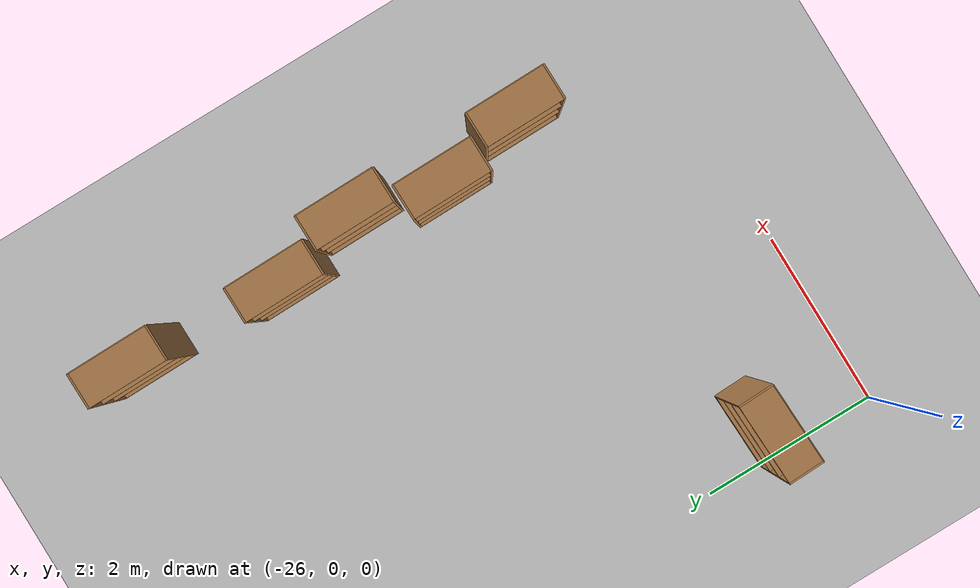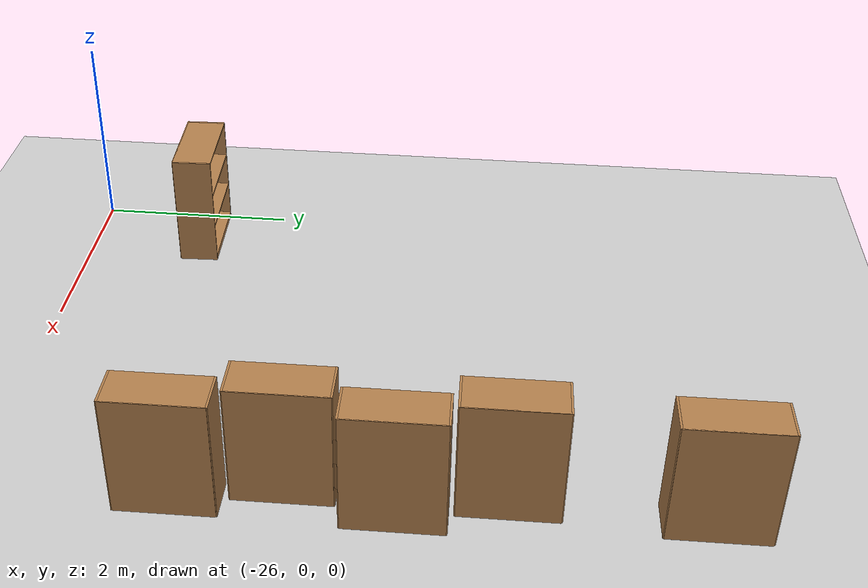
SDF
<sdf version="1.6">
 <world name="default">
  <model name="ground_plane">
   <static>1</static>
   <link name="link">
    <collision name="collision">
     <geometry><plane><normal>0 0 1</normal><size>100 100</size></plane></geometry>
     <surface>
      <contact><collide_bitmask>65535</collide_bitmask></contact>
      <friction><ode><mu>100</mu><mu2>50</mu2></ode></friction>
     </surface>
    </collision>
    <visual name="visual">
     <cast_shadows>0</cast_shadows>
     <geometry><plane><normal>0 0 1</normal><size>100 100</size></plane></geometry>
     <material>
      <script><uri>file://media/materials/scripts/gazebo.material</uri><name>Gazebo/Grey</name></script>
     </material>
    </visual>
   </link>
  </model>
  <model name="bookshelf_clone_2_clone_clone_0_clone_3_clone_0_clone_1_clone_clone_0_clone_0_clone_1">
   <static>1</static>
   <link name="link">
    <inertial><mass>1</mass></inertial>
    <collision name="back">
     <pose>0 0.005 0.6 0 -0 0</pose>
     <geometry><box><size>0.9 0.01 1.2</size></box></geometry>
    </collision>
    <visual name="visual1">
     <pose>0 0.005 0.6 0 -0 0</pose>
     <geometry><box><size>0.9 0.01 1.2</size></box></geometry>
     <material>
      <script><uri>file://media/materials/scripts/gazebo.material</uri><name>Gazebo/Wood</name></script>
     </material>
    </visual>
    <collision name="left_side">
     <pose>0.45 -0.195 0.6 0 -0 0</pose>
     <geometry><box><size>0.02 0.4 1.2</size></box></geometry>
    </collision>
    <visual name="visual2">
     <pose>0.45 -0.195 0.6 0 -0 0</pose>
     <geometry><box><size>0.02 0.4 1.2</size></box></geometry>
     <material>
      <script><uri>file://media/materials/scripts/gazebo.material</uri><name>Gazebo/Wood</name></script>
     </material>
    </visual>
    <collision name="right_side">
     <pose>-0.45 -0.195 0.6 0 -0 0</pose>
     <geometry><box><size>0.02 0.4 1.2</size></box></geometry>
    </collision>
    <visual name="visual3">
     <pose>-0.45 -0.195 0.6 0 -0 0</pose>
     <geometry><box><size>0.02 0.4 1.2</size></box></geometry>
     <material>
      <script><uri>file://media/materials/scripts/gazebo.material</uri><name>Gazebo/Wood</name></script>
     </material>
    </visual>
    <collision name="bottom">
     <pose>0 -0.195 0.03 0 -0 0</pose>
     <geometry><box><size>0.88 0.4 0.06</size></box></geometry>
    </collision>
    <visual name="visual4">
     <pose>0 -0.195 0.03 0 -0 0</pose>
     <geometry><box><size>0.88 0.4 0.06</size></box></geometry>
     <material>
      <script><uri>file://media/materials/scripts/gazebo.material</uri><name>Gazebo/Wood</name></script>
     </material>
    </visual>
    <collision name="top">
     <pose>0 -0.195 1.19 0 -0 0</pose>
     <geometry><box><size>0.88 0.4 0.02</size></box></geometry>
    </collision>
    <visual name="visual5">
     <pose>0 -0.195 1.19 0 -0 0</pose>
     <geometry><box><size>0.88 0.4 0.02</size></box></geometry>
     <material>
      <script><uri>file://media/materials/scripts/gazebo.material</uri><name>Gazebo/Wood</name></script>
     </material>
    </visual>
    <collision name="low_shelf">
     <pose>0 -0.195 0.43 0 -0 0</pose>
     <geometry><box><size>0.88 0.4 0.02</size></box></geometry>
    </collision>
    <visual name="visual6">
     <pose>0 -0.195 0.43 0 -0 0</pose>
     <geometry><box><size>0.88 0.4 0.02</size></box></geometry>
     <material>
      <script><uri>file://media/materials/scripts/gazebo.material</uri><name>Gazebo/Wood</name></script>
     </material>
    </visual>
    <collision name="high_shelf">
     <pose>0 -0.195 0.8 0 -0 0</pose>
     <geometry><box><size>0.88 0.4 0.02</size></box></geometry>
    </collision>
    <visual name="visual7">
     <pose>0 -0.195 0.8 0 -0 0</pose>
     <geometry><box><size>0.88 0.4 0.02</size></box></geometry>
     <material>
      <script><uri>file://media/materials/scripts/gazebo.material</uri><name>Gazebo/Wood</name></script>
     </material>
    </visual>
   </link>
   <pose>-21.4325 6.3905 0 0 0 -1.56003</pose>
  </model>
  <model name="bookshelf_clone_2_clone_clone_0_clone_clone_11">
   <static>1</static>
   <link name="link">
    <inertial><mass>1</mass></inertial>
    <collision name="back">
     <pose>0 0.005 0.6 0 -0 0</pose>
     <geometry><box><size>0.9 0.01 1.2</size></box></geometry>
    </collision>
    <visual name="visual1">
     <pose>0 0.005 0.6 0 -0 0</pose>
     <geometry><box><size>0.9 0.01 1.2</size></box></geometry>
     <material>
      <script><uri>file://media/materials/scripts/gazebo.material</uri><name>Gazebo/Wood</name></script>
     </material>
    </visual>
    <collision name="left_side">
     <pose>0.45 -0.195 0.6 0 -0 0</pose>
     <geometry><box><size>0.02 0.4 1.2</size></box></geometry>
    </collision>
    <visual name="visual2">
     <pose>0.45 -0.195 0.6 0 -0 0</pose>
     <geometry><box><size>0.02 0.4 1.2</size></box></geometry>
     <material>
      <script><uri>file://media/materials/scripts/gazebo.material</uri><name>Gazebo/Wood</name></script>
     </material>
    </visual>
    <collision name="right_side">
     <pose>-0.45 -0.195 0.6 0 -0 0</pose>
     <geometry><box><size>0.02 0.4 1.2</size></box></geometry>
    </collision>
    <visual name="visual3">
     <pose>-0.45 -0.195 0.6 0 -0 0</pose>
     <geometry><box><size>0.02 0.4 1.2</size></box></geometry>
     <material>
      <script><uri>file://media/materials/scripts/gazebo.material</uri><name>Gazebo/Wood</name></script>
     </material>
    </visual>
    <collision name="bottom">
     <pose>0 -0.195 0.03 0 -0 0</pose>
     <geometry><box><size>0.88 0.4 0.06</size></box></geometry>
    </collision>
    <visual name="visual4">
     <pose>0 -0.195 0.03 0 -0 0</pose>
     <geometry><box><size>0.88 0.4 0.06</size></box></geometry>
     <material>
      <script><uri>file://media/materials/scripts/gazebo.material</uri><name>Gazebo/Wood</name></script>
     </material>
    </visual>
    <collision name="top">
     <pose>0 -0.195 1.19 0 -0 0</pose>
     <geometry><box><size>0.88 0.4 0.02</size></box></geometry>
    </collision>
    <visual name="visual5">
     <pose>0 -0.195 1.19 0 -0 0</pose>
     <geometry><box><size>0.88 0.4 0.02</size></box></geometry>
     <material>
      <script><uri>file://media/materials/scripts/gazebo.material</uri><name>Gazebo/Wood</name></script>
     </material>
    </visual>
    <collision name="low_shelf">
     <pose>0 -0.195 0.43 0 -0 0</pose>
     <geometry><box><size>0.88 0.4 0.02</size></box></geometry>
    </collision>
    <visual name="visual6">
     <pose>0 -0.195 0.43 0 -0 0</pose>
     <geometry><box><size>0.88 0.4 0.02</size></box></geometry>
     <material>
      <script><uri>file://media/materials/scripts/gazebo.material</uri><name>Gazebo/Wood</name></script>
     </material>
    </visual>
    <collision name="high_shelf">
     <pose>0 -0.195 0.8 0 -0 0</pose>
     <geometry><box><size>0.88 0.4 0.02</size></box></geometry>
    </collision>
    <visual name="visual7">
     <pose>0 -0.195 0.8 0 -0 0</pose>
     <geometry><box><size>0.88 0.4 0.02</size></box></geometry>
     <material>
      <script><uri>file://media/materials/scripts/gazebo.material</uri><name>Gazebo/Wood</name></script>
     </material>
    </visual>
   </link>
   <pose>-25.5638 1.00162 0 0 0 -3.10717</pose>
  </model>
  <model name="bookshelf_clone_2_clone_clone_0_clone_3_clone_0_clone_1_clone_clone_0_clone_0_clone_1_clone">
   <static>1</static>
   <link name="link">
    <inertial><mass>1</mass></inertial>
    <collision name="back">
     <pose>0 0.005 0.6 0 -0 0</pose>
     <geometry><box><size>0.9 0.01 1.2</size></box></geometry>
    </collision>
    <visual name="visual1">
     <pose>0 0.005 0.6 0 -0 0</pose>
     <geometry><box><size>0.9 0.01 1.2</size></box></geometry>
     <material>
      <script><uri>file://media/materials/scripts/gazebo.material</uri><name>Gazebo/Wood</name></script>
     </material>
    </visual>
    <collision name="left_side">
     <pose>0.45 -0.195 0.6 0 -0 0</pose>
     <geometry><box><size>0.02 0.4 1.2</size></box></geometry>
    </collision>
    <visual name="visual2">
     <pose>0.45 -0.195 0.6 0 -0 0</pose>
     <geometry><box><size>0.02 0.4 1.2</size></box></geometry>
     <material>
      <script><uri>file://media/materials/scripts/gazebo.material</uri><name>Gazebo/Wood</name></script>
     </material>
    </visual>
    <collision name="right_side">
     <pose>-0.45 -0.195 0.6 0 -0 0</pose>
     <geometry><box><size>0.02 0.4 1.2</size></box></geometry>
    </collision>
    <visual name="visual3">
     <pose>-0.45 -0.195 0.6 0 -0 0</pose>
     <geometry><box><size>0.02 0.4 1.2</size></box></geometry>
     <material>
      <script><uri>file://media/materials/scripts/gazebo.material</uri><name>Gazebo/Wood</name></script>
     </material>
    </visual>
    <collision name="bottom">
     <pose>0 -0.195 0.03 0 -0 0</pose>
     <geometry><box><size>0.88 0.4 0.06</size></box></geometry>
    </collision>
    <visual name="visual4">
     <pose>0 -0.195 0.03 0 -0 0</pose>
     <geometry><box><size>0.88 0.4 0.06</size></box></geometry>
     <material>
      <script><uri>file://media/materials/scripts/gazebo.material</uri><name>Gazebo/Wood</name></script>
     </material>
    </visual>
    <collision name="top">
     <pose>0 -0.195 1.19 0 -0 0</pose>
     <geometry><box><size>0.88 0.4 0.02</size></box></geometry>
    </collision>
    <visual name="visual5">
     <pose>0 -0.195 1.19 0 -0 0</pose>
     <geometry><box><size>0.88 0.4 0.02</size></box></geometry>
     <material>
      <script><uri>file://media/materials/scripts/gazebo.material</uri><name>Gazebo/Wood</name></script>
     </material>
    </visual>
    <collision name="low_shelf">
     <pose>0 -0.195 0.43 0 -0 0</pose>
     <geometry><box><size>0.88 0.4 0.02</size></box></geometry>
    </collision>
    <visual name="visual6">
     <pose>0 -0.195 0.43 0 -0 0</pose>
     <geometry><box><size>0.88 0.4 0.02</size></box></geometry>
     <material>
      <script><uri>file://media/materials/scripts/gazebo.material</uri><name>Gazebo/Wood</name></script>
     </material>
    </visual>
    <collision name="high_shelf">
     <pose>0 -0.195 0.8 0 -0 0</pose>
     <geometry><box><size>0.88 0.4 0.02</size></box></geometry>
    </collision>
    <visual name="visual7">
     <pose>0 -0.195 0.8 0 -0 0</pose>
     <geometry><box><size>0.88 0.4 0.02</size></box></geometry>
     <material>
      <script><uri>file://media/materials/scripts/gazebo.material</uri><name>Gazebo/Wood</name></script>
     </material>
    </visual>
   </link>
   <pose>-21.514 4.64988 0 0 0 -1.56003</pose>
  </model>
  <model name="bookshelf_clone_2_clone_clone_0_clone_3_clone_0_clone_1_clone_clone_0_clone_0_clone_1_clone_0">
   <static>1</static>
   <link name="link">
    <inertial><mass>1</mass></inertial>
    <collision name="back">
     <pose>0 0.005 0.6 0 -0 0</pose>
     <geometry><box><size>0.9 0.01 1.2</size></box></geometry>
    </collision>
    <visual name="visual1">
     <pose>0 0.005 0.6 0 -0 0</pose>
     <geometry><box><size>0.9 0.01 1.2</size></box></geometry>
     <material>
      <script><uri>file://media/materials/scripts/gazebo.material</uri><name>Gazebo/Wood</name></script>
     </material>
    </visual>
    <collision name="left_side">
     <pose>0.45 -0.195 0.6 0 -0 0</pose>
     <geometry><box><size>0.02 0.4 1.2</size></box></geometry>
    </collision>
    <visual name="visual2">
     <pose>0.45 -0.195 0.6 0 -0 0</pose>
     <geometry><box><size>0.02 0.4 1.2</size></box></geometry>
     <material>
      <script><uri>file://media/materials/scripts/gazebo.material</uri><name>Gazebo/Wood</name></script>
     </material>
    </visual>
    <collision name="right_side">
     <pose>-0.45 -0.195 0.6 0 -0 0</pose>
     <geometry><box><size>0.02 0.4 1.2</size></box></geometry>
    </collision>
    <visual name="visual3">
     <pose>-0.45 -0.195 0.6 0 -0 0</pose>
     <geometry><box><size>0.02 0.4 1.2</size></box></geometry>
     <material>
      <script><uri>file://media/materials/scripts/gazebo.material</uri><name>Gazebo/Wood</name></script>
     </material>
    </visual>
    <collision name="bottom">
     <pose>0 -0.195 0.03 0 -0 0</pose>
     <geometry><box><size>0.88 0.4 0.06</size></box></geometry>
    </collision>
    <visual name="visual4">
     <pose>0 -0.195 0.03 0 -0 0</pose>
     <geometry><box><size>0.88 0.4 0.06</size></box></geometry>
     <material>
      <script><uri>file://media/materials/scripts/gazebo.material</uri><name>Gazebo/Wood</name></script>
     </material>
    </visual>
    <collision name="top">
     <pose>0 -0.195 1.19 0 -0 0</pose>
     <geometry><box><size>0.88 0.4 0.02</size></box></geometry>
    </collision>
    <visual name="visual5">
     <pose>0 -0.195 1.19 0 -0 0</pose>
     <geometry><box><size>0.88 0.4 0.02</size></box></geometry>
     <material>
      <script><uri>file://media/materials/scripts/gazebo.material</uri><name>Gazebo/Wood</name></script>
     </material>
    </visual>
    <collision name="low_shelf">
     <pose>0 -0.195 0.43 0 -0 0</pose>
     <geometry><box><size>0.88 0.4 0.02</size></box></geometry>
    </collision>
    <visual name="visual6">
     <pose>0 -0.195 0.43 0 -0 0</pose>
     <geometry><box><size>0.88 0.4 0.02</size></box></geometry>
     <material>
      <script><uri>file://media/materials/scripts/gazebo.material</uri><name>Gazebo/Wood</name></script>
     </material>
    </visual>
    <collision name="high_shelf">
     <pose>0 -0.195 0.8 0 -0 0</pose>
     <geometry><box><size>0.88 0.4 0.02</size></box></geometry>
    </collision>
    <visual name="visual7">
     <pose>0 -0.195 0.8 0 -0 0</pose>
     <geometry><box><size>0.88 0.4 0.02</size></box></geometry>
     <material>
      <script><uri>file://media/materials/scripts/gazebo.material</uri><name>Gazebo/Wood</name></script>
     </material>
    </visual>
   </link>
   <pose>-21.2729 3.69144 0 0 0 -1.56003</pose>
  </model>
  <model name="bookshelf_clone_2_clone_clone_0_clone_3_clone_0_clone_1_clone_clone_0_clone_0_clone_1_clone_1">
   <static>1</static>
   <link name="link">
    <inertial><mass>1</mass></inertial>
    <collision name="back">
     <pose>0 0.005 0.6 0 -0 0</pose>
     <geometry><box><size>0.9 0.01 1.2</size></box></geometry>
    </collision>
    <visual name="visual1">
     <pose>0 0.005 0.6 0 -0 0</pose>
     <geometry><box><size>0.9 0.01 1.2</size></box></geometry>
     <material>
      <script><uri>file://media/materials/scripts/gazebo.material</uri><name>Gazebo/Wood</name></script>
     </material>
    </visual>
    <collision name="left_side">
     <pose>0.45 -0.195 0.6 0 -0 0</pose>
     <geometry><box><size>0.02 0.4 1.2</size></box></geometry>
    </collision>
    <visual name="visual2">
     <pose>0.45 -0.195 0.6 0 -0 0</pose>
     <geometry><box><size>0.02 0.4 1.2</size></box></geometry>
     <material>
      <script><uri>file://media/materials/scripts/gazebo.material</uri><name>Gazebo/Wood</name></script>
     </material>
    </visual>
    <collision name="right_side">
     <pose>-0.45 -0.195 0.6 0 -0 0</pose>
     <geometry><box><size>0.02 0.4 1.2</size></box></geometry>
    </collision>
    <visual name="visual3">
     <pose>-0.45 -0.195 0.6 0 -0 0</pose>
     <geometry><box><size>0.02 0.4 1.2</size></box></geometry>
     <material>
      <script><uri>file://media/materials/scripts/gazebo.material</uri><name>Gazebo/Wood</name></script>
     </material>
    </visual>
    <collision name="bottom">
     <pose>0 -0.195 0.03 0 -0 0</pose>
     <geometry><box><size>0.88 0.4 0.06</size></box></geometry>
    </collision>
    <visual name="visual4">
     <pose>0 -0.195 0.03 0 -0 0</pose>
     <geometry><box><size>0.88 0.4 0.06</size></box></geometry>
     <material>
      <script><uri>file://media/materials/scripts/gazebo.material</uri><name>Gazebo/Wood</name></script>
     </material>
    </visual>
    <collision name="top">
     <pose>0 -0.195 1.19 0 -0 0</pose>
     <geometry><box><size>0.88 0.4 0.02</size></box></geometry>
    </collision>
    <visual name="visual5">
     <pose>0 -0.195 1.19 0 -0 0</pose>
     <geometry><box><size>0.88 0.4 0.02</size></box></geometry>
     <material>
      <script><uri>file://media/materials/scripts/gazebo.material</uri><name>Gazebo/Wood</name></script>
     </material>
    </visual>
    <collision name="low_shelf">
     <pose>0 -0.195 0.43 0 -0 0</pose>
     <geometry><box><size>0.88 0.4 0.02</size></box></geometry>
    </collision>
    <visual name="visual6">
     <pose>0 -0.195 0.43 0 -0 0</pose>
     <geometry><box><size>0.88 0.4 0.02</size></box></geometry>
     <material>
      <script><uri>file://media/materials/scripts/gazebo.material</uri><name>Gazebo/Wood</name></script>
     </material>
    </visual>
    <collision name="high_shelf">
     <pose>0 -0.195 0.8 0 -0 0</pose>
     <geometry><box><size>0.88 0.4 0.02</size></box></geometry>
    </collision>
    <visual name="visual7">
     <pose>0 -0.195 0.8 0 -0 0</pose>
     <geometry><box><size>0.88 0.4 0.02</size></box></geometry>
     <material>
      <script><uri>file://media/materials/scripts/gazebo.material</uri><name>Gazebo/Wood</name></script>
     </material>
    </visual>
   </link>
   <pose>-21.5133 2.71967 0 0 0 -1.56003</pose>
  </model>
  <model name="bookshelf_clone_2_clone_clone_0_clone_3_clone_0_clone_1_clone_clone_0_clone_0_clone_1_clone_2">
   <static>1</static>
   <link name="link">
    <inertial><mass>1</mass></inertial>
    <collision name="back">
     <pose>0 0.005 0.6 0 -0 0</pose>
     <geometry><box><size>0.9 0.01 1.2</size></box></geometry>
    </collision>
    <visual name="visual1">
     <pose>0 0.005 0.6 0 -0 0</pose>
     <geometry><box><size>0.9 0.01 1.2</size></box></geometry>
     <material>
      <script><uri>file://media/materials/scripts/gazebo.material</uri><name>Gazebo/Wood</name></script>
     </material>
    </visual>
    <collision name="left_side">
     <pose>0.45 -0.195 0.6 0 -0 0</pose>
     <geometry><box><size>0.02 0.4 1.2</size></box></geometry>
    </collision>
    <visual name="visual2">
     <pose>0.45 -0.195 0.6 0 -0 0</pose>
     <geometry><box><size>0.02 0.4 1.2</size></box></geometry>
     <material>
      <script><uri>file://media/materials/scripts/gazebo.material</uri><name>Gazebo/Wood</name></script>
     </material>
    </visual>
    <collision name="right_side">
     <pose>-0.45 -0.195 0.6 0 -0 0</pose>
     <geometry><box><size>0.02 0.4 1.2</size></box></geometry>
    </collision>
    <visual name="visual3">
     <pose>-0.45 -0.195 0.6 0 -0 0</pose>
     <geometry><box><size>0.02 0.4 1.2</size></box></geometry>
     <material>
      <script><uri>file://media/materials/scripts/gazebo.material</uri><name>Gazebo/Wood</name></script>
     </material>
    </visual>
    <collision name="bottom">
     <pose>0 -0.195 0.03 0 -0 0</pose>
     <geometry><box><size>0.88 0.4 0.06</size></box></geometry>
    </collision>
    <visual name="visual4">
     <pose>0 -0.195 0.03 0 -0 0</pose>
     <geometry><box><size>0.88 0.4 0.06</size></box></geometry>
     <material>
      <script><uri>file://media/materials/scripts/gazebo.material</uri><name>Gazebo/Wood</name></script>
     </material>
    </visual>
    <collision name="top">
     <pose>0 -0.195 1.19 0 -0 0</pose>
     <geometry><box><size>0.88 0.4 0.02</size></box></geometry>
    </collision>
    <visual name="visual5">
     <pose>0 -0.195 1.19 0 -0 0</pose>
     <geometry><box><size>0.88 0.4 0.02</size></box></geometry>
     <material>
      <script><uri>file://media/materials/scripts/gazebo.material</uri><name>Gazebo/Wood</name></script>
     </material>
    </visual>
    <collision name="low_shelf">
     <pose>0 -0.195 0.43 0 -0 0</pose>
     <geometry><box><size>0.88 0.4 0.02</size></box></geometry>
    </collision>
    <visual name="visual6">
     <pose>0 -0.195 0.43 0 -0 0</pose>
     <geometry><box><size>0.88 0.4 0.02</size></box></geometry>
     <material>
      <script><uri>file://media/materials/scripts/gazebo.material</uri><name>Gazebo/Wood</name></script>
     </material>
    </visual>
    <collision name="high_shelf">
     <pose>0 -0.195 0.8 0 -0 0</pose>
     <geometry><box><size>0.88 0.4 0.02</size></box></geometry>
    </collision>
    <visual name="visual7">
     <pose>0 -0.195 0.8 0 -0 0</pose>
     <geometry><box><size>0.88 0.4 0.02</size></box></geometry>
     <material>
      <script><uri>file://media/materials/scripts/gazebo.material</uri><name>Gazebo/Wood</name></script>
     </material>
    </visual>
   </link>
   <pose>-21.2856 1.74445 0 0 0 -1.56003</pose>
  </model>
 </world>
</sdf>
